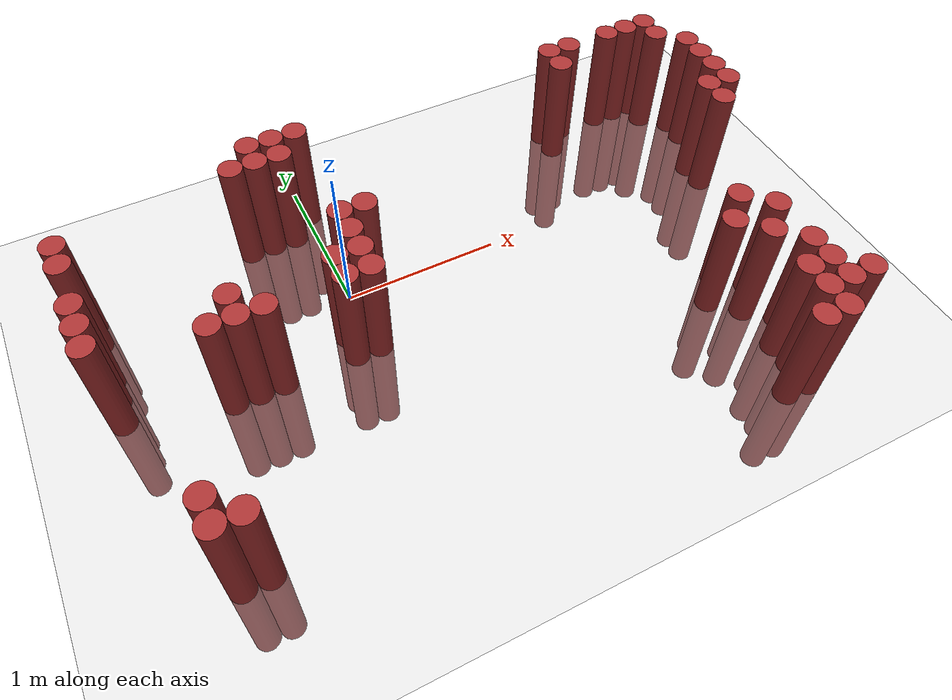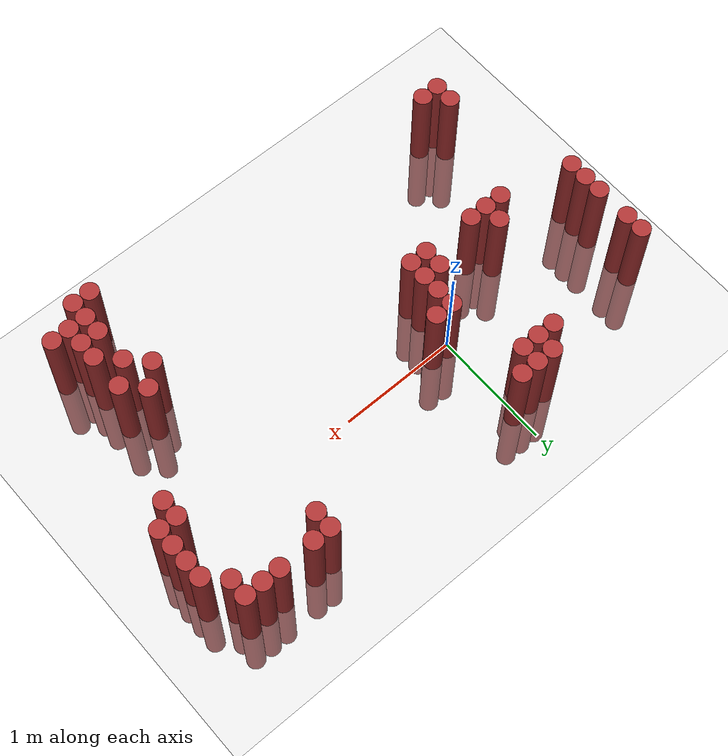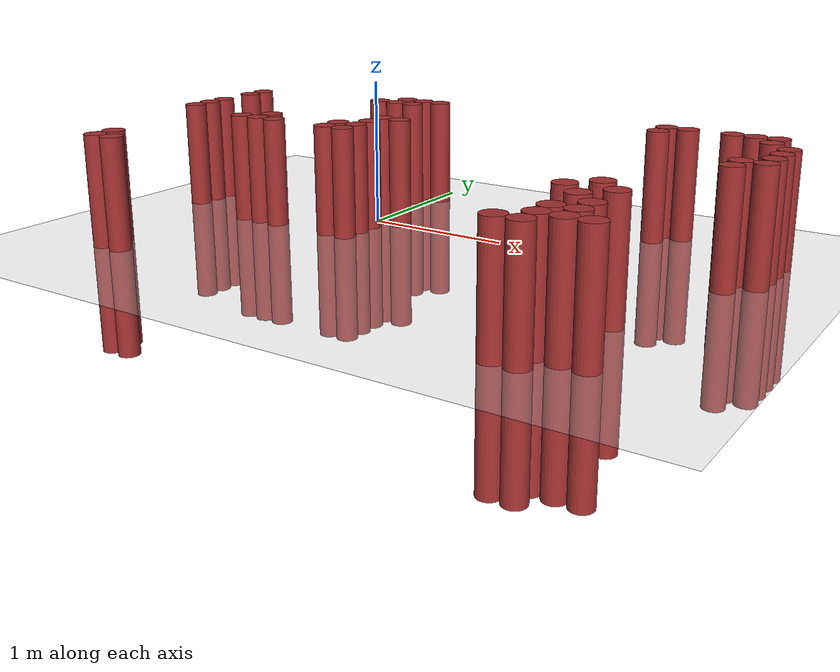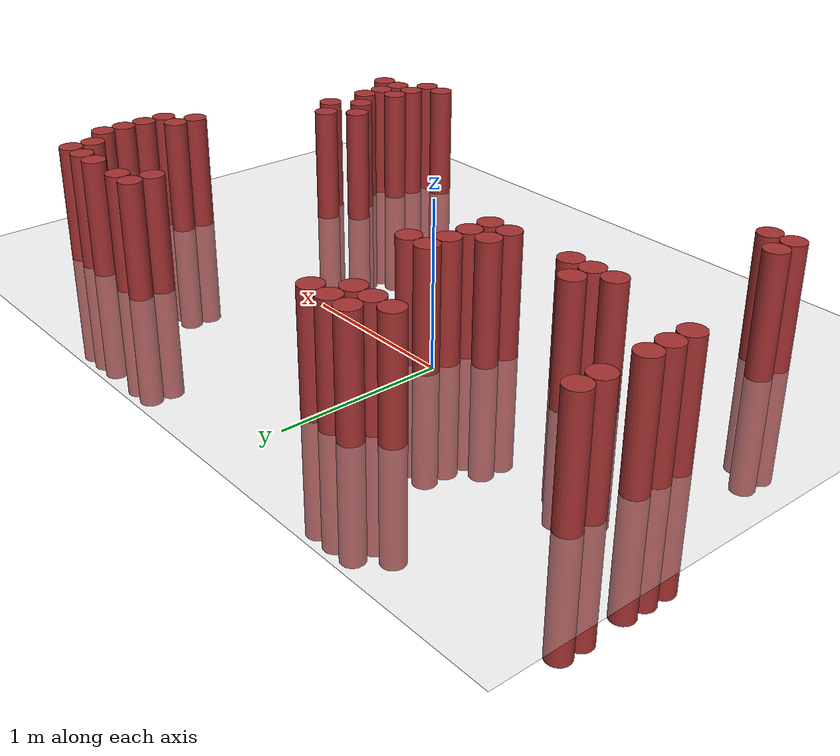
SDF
<sdf version="1.6">
 <world name="default">
  <model name="ground_plane">
   <static>1</static>
   <link name="link">
    <collision name="collision">
     <geometry><plane><normal>0 0 1</normal><size>100 100</size></plane></geometry>
     <surface><friction><ode><mu>100</mu><mu2>50</mu2></ode></friction></surface>
    </collision>
    <visual name="visual">
     <cast_shadows>0</cast_shadows>
     <geometry><plane><normal>0 0 1</normal><size>100 100</size></plane></geometry>
     <material>
      <script><uri>file://media/materials/scripts/gazebo.material</uri><name>Gazebo/Grey</name></script>
     </material>
    </visual>
   </link>
  </model>
  <model name="unit_cylinder_344">
   <static>1</static>
   <pose>-1.475000 -0.275000 0.000000 0.000000 0.000000 0.000000</pose>
   <link name="link">
    <inertial>
     <mass>1</mass>
     <inertia><ixx>0.145833</ixx><ixy>0</ixy><ixz>0</ixz><iyy>0.145833</iyy><iyz>0</iyz><izz>0.125</izz></inertia>
    </inertial>
    <collision name="collision">
     <geometry><cylinder><radius>0.075000</radius><length>1.5</length></cylinder></geometry>
    </collision>
    <visual name="visual">
     <geometry><cylinder><radius>0.075000</radius><length>1.5</length></cylinder></geometry>
     <material>
      <ambient>0.648000 0.192000 0.192000 1</ambient>
      <diffuse>0.648000 0.192000 0.192000 1</diffuse>
     </material>
     <material>
      <script><name>Gazebo/Grey</name><uri>file://media/materials/scripts/gazebo.material</uri></script>
     </material>
    </visual>
   </link>
  </model>
  <model name="unit_cylinder_345">
   <static>1</static>
   <pose>-1.475000 -0.125000 0.000000 0.000000 0.000000 0.000000</pose>
   <link name="link">
    <inertial>
     <mass>1</mass>
     <inertia><ixx>0.145833</ixx><ixy>0</ixy><ixz>0</ixz><iyy>0.145833</iyy><iyz>0</iyz><izz>0.125</izz></inertia>
    </inertial>
    <collision name="collision">
     <geometry><cylinder><radius>0.075000</radius><length>1.5</length></cylinder></geometry>
    </collision>
    <visual name="visual">
     <geometry><cylinder><radius>0.075000</radius><length>1.5</length></cylinder></geometry>
     <material>
      <ambient>0.648000 0.192000 0.192000 1</ambient>
      <diffuse>0.648000 0.192000 0.192000 1</diffuse>
     </material>
     <material>
      <script><name>Gazebo/Grey</name><uri>file://media/materials/scripts/gazebo.material</uri></script>
     </material>
    </visual>
   </link>
  </model>
  <model name="unit_cylinder_346">
   <static>1</static>
   <pose>-1.475000 0.025000 0.000000 0.000000 0.000000 0.000000</pose>
   <link name="link">
    <inertial>
     <mass>1</mass>
     <inertia><ixx>0.145833</ixx><ixy>0</ixy><ixz>0</ixz><iyy>0.145833</iyy><iyz>0</iyz><izz>0.125</izz></inertia>
    </inertial>
    <collision name="collision">
     <geometry><cylinder><radius>0.075000</radius><length>1.5</length></cylinder></geometry>
    </collision>
    <visual name="visual">
     <geometry><cylinder><radius>0.075000</radius><length>1.5</length></cylinder></geometry>
     <material>
      <ambient>0.648000 0.192000 0.192000 1</ambient>
      <diffuse>0.648000 0.192000 0.192000 1</diffuse>
     </material>
     <material>
      <script><name>Gazebo/Grey</name><uri>file://media/materials/scripts/gazebo.material</uri></script>
     </material>
    </visual>
   </link>
  </model>
  <model name="unit_cylinder_347">
   <static>1</static>
   <pose>-1.475000 0.325000 0.000000 0.000000 0.000000 0.000000</pose>
   <link name="link">
    <inertial>
     <mass>1</mass>
     <inertia><ixx>0.145833</ixx><ixy>0</ixy><ixz>0</ixz><iyy>0.145833</iyy><iyz>0</iyz><izz>0.125</izz></inertia>
    </inertial>
    <collision name="collision">
     <geometry><cylinder><radius>0.075000</radius><length>1.5</length></cylinder></geometry>
    </collision>
    <visual name="visual">
     <geometry><cylinder><radius>0.075000</radius><length>1.5</length></cylinder></geometry>
     <material>
      <ambient>0.648000 0.192000 0.192000 1</ambient>
      <diffuse>0.648000 0.192000 0.192000 1</diffuse>
     </material>
     <material>
      <script><name>Gazebo/Grey</name><uri>file://media/materials/scripts/gazebo.material</uri></script>
     </material>
    </visual>
   </link>
  </model>
  <model name="unit_cylinder_348">
   <static>1</static>
   <pose>-1.475000 0.475000 0.000000 0.000000 0.000000 0.000000</pose>
   <link name="link">
    <inertial>
     <mass>1</mass>
     <inertia><ixx>0.145833</ixx><ixy>0</ixy><ixz>0</ixz><iyy>0.145833</iyy><iyz>0</iyz><izz>0.125</izz></inertia>
    </inertial>
    <collision name="collision">
     <geometry><cylinder><radius>0.075000</radius><length>1.5</length></cylinder></geometry>
    </collision>
    <visual name="visual">
     <geometry><cylinder><radius>0.075000</radius><length>1.5</length></cylinder></geometry>
     <material>
      <ambient>0.648000 0.192000 0.192000 1</ambient>
      <diffuse>0.648000 0.192000 0.192000 1</diffuse>
     </material>
     <material>
      <script><name>Gazebo/Grey</name><uri>file://media/materials/scripts/gazebo.material</uri></script>
     </material>
    </visual>
   </link>
  </model>
  <model name="unit_cylinder_353">
   <static>1</static>
   <pose>-1.175000 -1.475000 0.000000 0.000000 0.000000 0.000000</pose>
   <link name="link">
    <inertial>
     <mass>1</mass>
     <inertia><ixx>0.145833</ixx><ixy>0</ixy><ixz>0</ixz><iyy>0.145833</iyy><iyz>0</iyz><izz>0.125</izz></inertia>
    </inertial>
    <collision name="collision">
     <geometry><cylinder><radius>0.075000</radius><length>1.5</length></cylinder></geometry>
    </collision>
    <visual name="visual">
     <geometry><cylinder><radius>0.075000</radius><length>1.5</length></cylinder></geometry>
     <material>
      <ambient>0.648000 0.192000 0.192000 1</ambient>
      <diffuse>0.648000 0.192000 0.192000 1</diffuse>
     </material>
     <material>
      <script><name>Gazebo/Grey</name><uri>file://media/materials/scripts/gazebo.material</uri></script>
     </material>
    </visual>
   </link>
  </model>
  <model name="unit_cylinder_354">
   <static>1</static>
   <pose>-1.175000 -1.325000 0.000000 0.000000 0.000000 0.000000</pose>
   <link name="link">
    <inertial>
     <mass>1</mass>
     <inertia><ixx>0.145833</ixx><ixy>0</ixy><ixz>0</ixz><iyy>0.145833</iyy><iyz>0</iyz><izz>0.125</izz></inertia>
    </inertial>
    <collision name="collision">
     <geometry><cylinder><radius>0.075000</radius><length>1.5</length></cylinder></geometry>
    </collision>
    <visual name="visual">
     <geometry><cylinder><radius>0.075000</radius><length>1.5</length></cylinder></geometry>
     <material>
      <ambient>0.648000 0.192000 0.192000 1</ambient>
      <diffuse>0.648000 0.192000 0.192000 1</diffuse>
     </material>
     <material>
      <script><name>Gazebo/Grey</name><uri>file://media/materials/scripts/gazebo.material</uri></script>
     </material>
    </visual>
   </link>
  </model>
  <model name="unit_cylinder_355">
   <static>1</static>
   <pose>-1.025000 -1.475000 0.000000 0.000000 0.000000 0.000000</pose>
   <link name="link">
    <inertial>
     <mass>1</mass>
     <inertia><ixx>0.145833</ixx><ixy>0</ixy><ixz>0</ixz><iyy>0.145833</iyy><iyz>0</iyz><izz>0.125</izz></inertia>
    </inertial>
    <collision name="collision">
     <geometry><cylinder><radius>0.075000</radius><length>1.5</length></cylinder></geometry>
    </collision>
    <visual name="visual">
     <geometry><cylinder><radius>0.075000</radius><length>1.5</length></cylinder></geometry>
     <material>
      <ambient>0.648000 0.192000 0.192000 1</ambient>
      <diffuse>0.648000 0.192000 0.192000 1</diffuse>
     </material>
     <material>
      <script><name>Gazebo/Grey</name><uri>file://media/materials/scripts/gazebo.material</uri></script>
     </material>
    </visual>
   </link>
  </model>
  <model name="unit_cylinder_360">
   <static>1</static>
   <pose>-0.875000 -0.425000 0.000000 0.000000 0.000000 0.000000</pose>
   <link name="link">
    <inertial>
     <mass>1</mass>
     <inertia><ixx>0.145833</ixx><ixy>0</ixy><ixz>0</ixz><iyy>0.145833</iyy><iyz>0</iyz><izz>0.125</izz></inertia>
    </inertial>
    <collision name="collision">
     <geometry><cylinder><radius>0.075000</radius><length>1.5</length></cylinder></geometry>
    </collision>
    <visual name="visual">
     <geometry><cylinder><radius>0.075000</radius><length>1.5</length></cylinder></geometry>
     <material>
      <ambient>0.648000 0.192000 0.192000 1</ambient>
      <diffuse>0.648000 0.192000 0.192000 1</diffuse>
     </material>
     <material>
      <script><name>Gazebo/Grey</name><uri>file://media/materials/scripts/gazebo.material</uri></script>
     </material>
    </visual>
   </link>
  </model>
  <model name="unit_cylinder_366">
   <static>1</static>
   <pose>-0.725000 -0.425000 0.000000 0.000000 0.000000 0.000000</pose>
   <link name="link">
    <inertial>
     <mass>1</mass>
     <inertia><ixx>0.145833</ixx><ixy>0</ixy><ixz>0</ixz><iyy>0.145833</iyy><iyz>0</iyz><izz>0.125</izz></inertia>
    </inertial>
    <collision name="collision">
     <geometry><cylinder><radius>0.075000</radius><length>1.5</length></cylinder></geometry>
    </collision>
    <visual name="visual">
     <geometry><cylinder><radius>0.075000</radius><length>1.5</length></cylinder></geometry>
     <material>
      <ambient>0.648000 0.192000 0.192000 1</ambient>
      <diffuse>0.648000 0.192000 0.192000 1</diffuse>
     </material>
     <material>
      <script><name>Gazebo/Grey</name><uri>file://media/materials/scripts/gazebo.material</uri></script>
     </material>
    </visual>
   </link>
  </model>
  <model name="unit_cylinder_367">
   <static>1</static>
   <pose>-0.725000 -0.275000 0.000000 0.000000 0.000000 0.000000</pose>
   <link name="link">
    <inertial>
     <mass>1</mass>
     <inertia><ixx>0.145833</ixx><ixy>0</ixy><ixz>0</ixz><iyy>0.145833</iyy><iyz>0</iyz><izz>0.125</izz></inertia>
    </inertial>
    <collision name="collision">
     <geometry><cylinder><radius>0.075000</radius><length>1.5</length></cylinder></geometry>
    </collision>
    <visual name="visual">
     <geometry><cylinder><radius>0.075000</radius><length>1.5</length></cylinder></geometry>
     <material>
      <ambient>0.648000 0.192000 0.192000 1</ambient>
      <diffuse>0.648000 0.192000 0.192000 1</diffuse>
     </material>
     <material>
      <script><name>Gazebo/Grey</name><uri>file://media/materials/scripts/gazebo.material</uri></script>
     </material>
    </visual>
   </link>
  </model>
  <model name="unit_cylinder_369">
   <static>1</static>
   <pose>-0.575000 -0.425000 0.000000 0.000000 0.000000 0.000000</pose>
   <link name="link">
    <inertial>
     <mass>1</mass>
     <inertia><ixx>0.145833</ixx><ixy>0</ixy><ixz>0</ixz><iyy>0.145833</iyy><iyz>0</iyz><izz>0.125</izz></inertia>
    </inertial>
    <collision name="collision">
     <geometry><cylinder><radius>0.075000</radius><length>1.5</length></cylinder></geometry>
    </collision>
    <visual name="visual">
     <geometry><cylinder><radius>0.075000</radius><length>1.5</length></cylinder></geometry>
     <material>
      <ambient>0.648000 0.192000 0.192000 1</ambient>
      <diffuse>0.648000 0.192000 0.192000 1</diffuse>
     </material>
     <material>
      <script><name>Gazebo/Grey</name><uri>file://media/materials/scripts/gazebo.material</uri></script>
     </material>
    </visual>
   </link>
  </model>
  <model name="unit_cylinder_370">
   <static>1</static>
   <pose>-0.425000 0.625000 0.000000 0.000000 0.000000 0.000000</pose>
   <link name="link">
    <inertial>
     <mass>1</mass>
     <inertia><ixx>0.145833</ixx><ixy>0</ixy><ixz>0</ixz><iyy>0.145833</iyy><iyz>0</iyz><izz>0.125</izz></inertia>
    </inertial>
    <collision name="collision">
     <geometry><cylinder><radius>0.075000</radius><length>1.5</length></cylinder></geometry>
    </collision>
    <visual name="visual">
     <geometry><cylinder><radius>0.075000</radius><length>1.5</length></cylinder></geometry>
     <material>
      <ambient>0.648000 0.192000 0.192000 1</ambient>
      <diffuse>0.648000 0.192000 0.192000 1</diffuse>
     </material>
     <material>
      <script><name>Gazebo/Grey</name><uri>file://media/materials/scripts/gazebo.material</uri></script>
     </material>
    </visual>
   </link>
  </model>
  <model name="unit_cylinder_373">
   <static>1</static>
   <pose>-0.275000 0.625000 0.000000 0.000000 0.000000 0.000000</pose>
   <link name="link">
    <inertial>
     <mass>1</mass>
     <inertia><ixx>0.145833</ixx><ixy>0</ixy><ixz>0</ixz><iyy>0.145833</iyy><iyz>0</iyz><izz>0.125</izz></inertia>
    </inertial>
    <collision name="collision">
     <geometry><cylinder><radius>0.075000</radius><length>1.5</length></cylinder></geometry>
    </collision>
    <visual name="visual">
     <geometry><cylinder><radius>0.075000</radius><length>1.5</length></cylinder></geometry>
     <material>
      <ambient>0.648000 0.192000 0.192000 1</ambient>
      <diffuse>0.648000 0.192000 0.192000 1</diffuse>
     </material>
     <material>
      <script><name>Gazebo/Grey</name><uri>file://media/materials/scripts/gazebo.material</uri></script>
     </material>
    </visual>
   </link>
  </model>
  <model name="unit_cylinder_374">
   <static>1</static>
   <pose>-0.275000 0.775000 0.000000 0.000000 0.000000 0.000000</pose>
   <link name="link">
    <inertial>
     <mass>1</mass>
     <inertia><ixx>0.145833</ixx><ixy>0</ixy><ixz>0</ixz><iyy>0.145833</iyy><iyz>0</iyz><izz>0.125</izz></inertia>
    </inertial>
    <collision name="collision">
     <geometry><cylinder><radius>0.075000</radius><length>1.5</length></cylinder></geometry>
    </collision>
    <visual name="visual">
     <geometry><cylinder><radius>0.075000</radius><length>1.5</length></cylinder></geometry>
     <material>
      <ambient>0.648000 0.192000 0.192000 1</ambient>
      <diffuse>0.648000 0.192000 0.192000 1</diffuse>
     </material>
     <material>
      <script><name>Gazebo/Grey</name><uri>file://media/materials/scripts/gazebo.material</uri></script>
     </material>
    </visual>
   </link>
  </model>
  <model name="unit_cylinder_376">
   <static>1</static>
   <pose>-0.125000 -0.425000 0.000000 0.000000 0.000000 0.000000</pose>
   <link name="link">
    <inertial>
     <mass>1</mass>
     <inertia><ixx>0.145833</ixx><ixy>0</ixy><ixz>0</ixz><iyy>0.145833</iyy><iyz>0</iyz><izz>0.125</izz></inertia>
    </inertial>
    <collision name="collision">
     <geometry><cylinder><radius>0.075000</radius><length>1.5</length></cylinder></geometry>
    </collision>
    <visual name="visual">
     <geometry><cylinder><radius>0.075000</radius><length>1.5</length></cylinder></geometry>
     <material>
      <ambient>0.648000 0.192000 0.192000 1</ambient>
      <diffuse>0.648000 0.192000 0.192000 1</diffuse>
     </material>
     <material>
      <script><name>Gazebo/Grey</name><uri>file://media/materials/scripts/gazebo.material</uri></script>
     </material>
    </visual>
   </link>
  </model>
  <model name="unit_cylinder_377">
   <static>1</static>
   <pose>-0.125000 -0.275000 0.000000 0.000000 0.000000 0.000000</pose>
   <link name="link">
    <inertial>
     <mass>1</mass>
     <inertia><ixx>0.145833</ixx><ixy>0</ixy><ixz>0</ixz><iyy>0.145833</iyy><iyz>0</iyz><izz>0.125</izz></inertia>
    </inertial>
    <collision name="collision">
     <geometry><cylinder><radius>0.075000</radius><length>1.5</length></cylinder></geometry>
    </collision>
    <visual name="visual">
     <geometry><cylinder><radius>0.075000</radius><length>1.5</length></cylinder></geometry>
     <material>
      <ambient>0.648000 0.192000 0.192000 1</ambient>
      <diffuse>0.648000 0.192000 0.192000 1</diffuse>
     </material>
     <material>
      <script><name>Gazebo/Grey</name><uri>file://media/materials/scripts/gazebo.material</uri></script>
     </material>
    </visual>
   </link>
  </model>
  <model name="unit_cylinder_378">
   <static>1</static>
   <pose>-0.125000 0.625000 0.000000 0.000000 0.000000 0.000000</pose>
   <link name="link">
    <inertial>
     <mass>1</mass>
     <inertia><ixx>0.145833</ixx><ixy>0</ixy><ixz>0</ixz><iyy>0.145833</iyy><iyz>0</iyz><izz>0.125</izz></inertia>
    </inertial>
    <collision name="collision">
     <geometry><cylinder><radius>0.075000</radius><length>1.5</length></cylinder></geometry>
    </collision>
    <visual name="visual">
     <geometry><cylinder><radius>0.075000</radius><length>1.5</length></cylinder></geometry>
     <material>
      <ambient>0.648000 0.192000 0.192000 1</ambient>
      <diffuse>0.648000 0.192000 0.192000 1</diffuse>
     </material>
     <material>
      <script><name>Gazebo/Grey</name><uri>file://media/materials/scripts/gazebo.material</uri></script>
     </material>
    </visual>
   </link>
  </model>
  <model name="unit_cylinder_379">
   <static>1</static>
   <pose>-0.125000 0.775000 0.000000 0.000000 0.000000 0.000000</pose>
   <link name="link">
    <inertial>
     <mass>1</mass>
     <inertia><ixx>0.145833</ixx><ixy>0</ixy><ixz>0</ixz><iyy>0.145833</iyy><iyz>0</iyz><izz>0.125</izz></inertia>
    </inertial>
    <collision name="collision">
     <geometry><cylinder><radius>0.075000</radius><length>1.5</length></cylinder></geometry>
    </collision>
    <visual name="visual">
     <geometry><cylinder><radius>0.075000</radius><length>1.5</length></cylinder></geometry>
     <material>
      <ambient>0.648000 0.192000 0.192000 1</ambient>
      <diffuse>0.648000 0.192000 0.192000 1</diffuse>
     </material>
     <material>
      <script><name>Gazebo/Grey</name><uri>file://media/materials/scripts/gazebo.material</uri></script>
     </material>
    </visual>
   </link>
  </model>
  <model name="unit_cylinder_381">
   <static>1</static>
   <pose>0.025000 -0.425000 0.000000 0.000000 0.000000 0.000000</pose>
   <link name="link">
    <inertial>
     <mass>1</mass>
     <inertia><ixx>0.145833</ixx><ixy>0</ixy><ixz>0</ixz><iyy>0.145833</iyy><iyz>0</iyz><izz>0.125</izz></inertia>
    </inertial>
    <collision name="collision">
     <geometry><cylinder><radius>0.075000</radius><length>1.5</length></cylinder></geometry>
    </collision>
    <visual name="visual">
     <geometry><cylinder><radius>0.075000</radius><length>1.5</length></cylinder></geometry>
     <material>
      <ambient>0.648000 0.192000 0.192000 1</ambient>
      <diffuse>0.648000 0.192000 0.192000 1</diffuse>
     </material>
     <material>
      <script><name>Gazebo/Grey</name><uri>file://media/materials/scripts/gazebo.material</uri></script>
     </material>
    </visual>
   </link>
  </model>
  <model name="unit_cylinder_382">
   <static>1</static>
   <pose>0.025000 -0.275000 0.000000 0.000000 0.000000 0.000000</pose>
   <link name="link">
    <inertial>
     <mass>1</mass>
     <inertia><ixx>0.145833</ixx><ixy>0</ixy><ixz>0</ixz><iyy>0.145833</iyy><iyz>0</iyz><izz>0.125</izz></inertia>
    </inertial>
    <collision name="collision">
     <geometry><cylinder><radius>0.075000</radius><length>1.5</length></cylinder></geometry>
    </collision>
    <visual name="visual">
     <geometry><cylinder><radius>0.075000</radius><length>1.5</length></cylinder></geometry>
     <material>
      <ambient>0.648000 0.192000 0.192000 1</ambient>
      <diffuse>0.648000 0.192000 0.192000 1</diffuse>
     </material>
     <material>
      <script><name>Gazebo/Grey</name><uri>file://media/materials/scripts/gazebo.material</uri></script>
     </material>
    </visual>
   </link>
  </model>
  <model name="unit_cylinder_383">
   <static>1</static>
   <pose>0.025000 -0.125000 0.000000 0.000000 0.000000 0.000000</pose>
   <link name="link">
    <inertial>
     <mass>1</mass>
     <inertia><ixx>0.145833</ixx><ixy>0</ixy><ixz>0</ixz><iyy>0.145833</iyy><iyz>0</iyz><izz>0.125</izz></inertia>
    </inertial>
    <collision name="collision">
     <geometry><cylinder><radius>0.075000</radius><length>1.5</length></cylinder></geometry>
    </collision>
    <visual name="visual">
     <geometry><cylinder><radius>0.075000</radius><length>1.5</length></cylinder></geometry>
     <material>
      <ambient>0.648000 0.192000 0.192000 1</ambient>
      <diffuse>0.648000 0.192000 0.192000 1</diffuse>
     </material>
     <material>
      <script><name>Gazebo/Grey</name><uri>file://media/materials/scripts/gazebo.material</uri></script>
     </material>
    </visual>
   </link>
  </model>
  <model name="unit_cylinder_384">
   <static>1</static>
   <pose>0.025000 0.025000 0.000000 0.000000 0.000000 0.000000</pose>
   <link name="link">
    <inertial>
     <mass>1</mass>
     <inertia><ixx>0.145833</ixx><ixy>0</ixy><ixz>0</ixz><iyy>0.145833</iyy><iyz>0</iyz><izz>0.125</izz></inertia>
    </inertial>
    <collision name="collision">
     <geometry><cylinder><radius>0.075000</radius><length>1.5</length></cylinder></geometry>
    </collision>
    <visual name="visual">
     <geometry><cylinder><radius>0.075000</radius><length>1.5</length></cylinder></geometry>
     <material>
      <ambient>0.648000 0.192000 0.192000 1</ambient>
      <diffuse>0.648000 0.192000 0.192000 1</diffuse>
     </material>
     <material>
      <script><name>Gazebo/Grey</name><uri>file://media/materials/scripts/gazebo.material</uri></script>
     </material>
    </visual>
   </link>
  </model>
  <model name="unit_cylinder_385">
   <static>1</static>
   <pose>0.025000 0.775000 0.000000 0.000000 0.000000 0.000000</pose>
   <link name="link">
    <inertial>
     <mass>1</mass>
     <inertia><ixx>0.145833</ixx><ixy>0</ixy><ixz>0</ixz><iyy>0.145833</iyy><iyz>0</iyz><izz>0.125</izz></inertia>
    </inertial>
    <collision name="collision">
     <geometry><cylinder><radius>0.075000</radius><length>1.5</length></cylinder></geometry>
    </collision>
    <visual name="visual">
     <geometry><cylinder><radius>0.075000</radius><length>1.5</length></cylinder></geometry>
     <material>
      <ambient>0.648000 0.192000 0.192000 1</ambient>
      <diffuse>0.648000 0.192000 0.192000 1</diffuse>
     </material>
     <material>
      <script><name>Gazebo/Grey</name><uri>file://media/materials/scripts/gazebo.material</uri></script>
     </material>
    </visual>
   </link>
  </model>
  <model name="unit_cylinder_388">
   <static>1</static>
   <pose>0.175000 0.025000 0.000000 0.000000 0.000000 0.000000</pose>
   <link name="link">
    <inertial>
     <mass>1</mass>
     <inertia><ixx>0.145833</ixx><ixy>0</ixy><ixz>0</ixz><iyy>0.145833</iyy><iyz>0</iyz><izz>0.125</izz></inertia>
    </inertial>
    <collision name="collision">
     <geometry><cylinder><radius>0.075000</radius><length>1.5</length></cylinder></geometry>
    </collision>
    <visual name="visual">
     <geometry><cylinder><radius>0.075000</radius><length>1.5</length></cylinder></geometry>
     <material>
      <ambient>0.648000 0.192000 0.192000 1</ambient>
      <diffuse>0.648000 0.192000 0.192000 1</diffuse>
     </material>
     <material>
      <script><name>Gazebo/Grey</name><uri>file://media/materials/scripts/gazebo.material</uri></script>
     </material>
    </visual>
   </link>
  </model>
  <model name="unit_cylinder_391">
   <static>1</static>
   <pose>1.825000 0.625000 0.000000 0.000000 0.000000 0.000000</pose>
   <link name="link">
    <inertial>
     <mass>1</mass>
     <inertia><ixx>0.145833</ixx><ixy>0</ixy><ixz>0</ixz><iyy>0.145833</iyy><iyz>0</iyz><izz>0.125</izz></inertia>
    </inertial>
    <collision name="collision">
     <geometry><cylinder><radius>0.075000</radius><length>1.5</length></cylinder></geometry>
    </collision>
    <visual name="visual">
     <geometry><cylinder><radius>0.075000</radius><length>1.5</length></cylinder></geometry>
     <material>
      <ambient>0.648000 0.192000 0.192000 1</ambient>
      <diffuse>0.648000 0.192000 0.192000 1</diffuse>
     </material>
     <material>
      <script><name>Gazebo/Grey</name><uri>file://media/materials/scripts/gazebo.material</uri></script>
     </material>
    </visual>
   </link>
  </model>
  <model name="unit_cylinder_392">
   <static>1</static>
   <pose>1.825000 0.775000 0.000000 0.000000 0.000000 0.000000</pose>
   <link name="link">
    <inertial>
     <mass>1</mass>
     <inertia><ixx>0.145833</ixx><ixy>0</ixy><ixz>0</ixz><iyy>0.145833</iyy><iyz>0</iyz><izz>0.125</izz></inertia>
    </inertial>
    <collision name="collision">
     <geometry><cylinder><radius>0.075000</radius><length>1.5</length></cylinder></geometry>
    </collision>
    <visual name="visual">
     <geometry><cylinder><radius>0.075000</radius><length>1.5</length></cylinder></geometry>
     <material>
      <ambient>0.648000 0.192000 0.192000 1</ambient>
      <diffuse>0.648000 0.192000 0.192000 1</diffuse>
     </material>
     <material>
      <script><name>Gazebo/Grey</name><uri>file://media/materials/scripts/gazebo.material</uri></script>
     </material>
    </visual>
   </link>
  </model>
  <model name="unit_cylinder_393">
   <static>1</static>
   <pose>1.975000 -1.775000 0.000000 0.000000 0.000000 0.000000</pose>
   <link name="link">
    <inertial>
     <mass>1</mass>
     <inertia><ixx>0.145833</ixx><ixy>0</ixy><ixz>0</ixz><iyy>0.145833</iyy><iyz>0</iyz><izz>0.125</izz></inertia>
    </inertial>
    <collision name="collision">
     <geometry><cylinder><radius>0.075000</radius><length>1.5</length></cylinder></geometry>
    </collision>
    <visual name="visual">
     <geometry><cylinder><radius>0.075000</radius><length>1.5</length></cylinder></geometry>
     <material>
      <ambient>0.648000 0.192000 0.192000 1</ambient>
      <diffuse>0.648000 0.192000 0.192000 1</diffuse>
     </material>
     <material>
      <script><name>Gazebo/Grey</name><uri>file://media/materials/scripts/gazebo.material</uri></script>
     </material>
    </visual>
   </link>
  </model>
  <model name="unit_cylinder_394">
   <static>1</static>
   <pose>1.975000 -1.025000 0.000000 0.000000 0.000000 0.000000</pose>
   <link name="link">
    <inertial>
     <mass>1</mass>
     <inertia><ixx>0.145833</ixx><ixy>0</ixy><ixz>0</ixz><iyy>0.145833</iyy><iyz>0</iyz><izz>0.125</izz></inertia>
    </inertial>
    <collision name="collision">
     <geometry><cylinder><radius>0.075000</radius><length>1.5</length></cylinder></geometry>
    </collision>
    <visual name="visual">
     <geometry><cylinder><radius>0.075000</radius><length>1.5</length></cylinder></geometry>
     <material>
      <ambient>0.648000 0.192000 0.192000 1</ambient>
      <diffuse>0.648000 0.192000 0.192000 1</diffuse>
     </material>
     <material>
      <script><name>Gazebo/Grey</name><uri>file://media/materials/scripts/gazebo.material</uri></script>
     </material>
    </visual>
   </link>
  </model>
  <model name="unit_cylinder_395">
   <static>1</static>
   <pose>1.975000 0.775000 0.000000 0.000000 0.000000 0.000000</pose>
   <link name="link">
    <inertial>
     <mass>1</mass>
     <inertia><ixx>0.145833</ixx><ixy>0</ixy><ixz>0</ixz><iyy>0.145833</iyy><iyz>0</iyz><izz>0.125</izz></inertia>
    </inertial>
    <collision name="collision">
     <geometry><cylinder><radius>0.075000</radius><length>1.5</length></cylinder></geometry>
    </collision>
    <visual name="visual">
     <geometry><cylinder><radius>0.075000</radius><length>1.5</length></cylinder></geometry>
     <material>
      <ambient>0.648000 0.192000 0.192000 1</ambient>
      <diffuse>0.648000 0.192000 0.192000 1</diffuse>
     </material>
     <material>
      <script><name>Gazebo/Grey</name><uri>file://media/materials/scripts/gazebo.material</uri></script>
     </material>
    </visual>
   </link>
  </model>
  <model name="unit_cylinder_396">
   <static>1</static>
   <pose>2.125000 -1.775000 0.000000 0.000000 0.000000 0.000000</pose>
   <link name="link">
    <inertial>
     <mass>1</mass>
     <inertia><ixx>0.145833</ixx><ixy>0</ixy><ixz>0</ixz><iyy>0.145833</iyy><iyz>0</iyz><izz>0.125</izz></inertia>
    </inertial>
    <collision name="collision">
     <geometry><cylinder><radius>0.075000</radius><length>1.5</length></cylinder></geometry>
    </collision>
    <visual name="visual">
     <geometry><cylinder><radius>0.075000</radius><length>1.5</length></cylinder></geometry>
     <material>
      <ambient>0.648000 0.192000 0.192000 1</ambient>
      <diffuse>0.648000 0.192000 0.192000 1</diffuse>
     </material>
     <material>
      <script><name>Gazebo/Grey</name><uri>file://media/materials/scripts/gazebo.material</uri></script>
     </material>
    </visual>
   </link>
  </model>
  <model name="unit_cylinder_397">
   <static>1</static>
   <pose>2.125000 -1.625000 0.000000 0.000000 0.000000 0.000000</pose>
   <link name="link">
    <inertial>
     <mass>1</mass>
     <inertia><ixx>0.145833</ixx><ixy>0</ixy><ixz>0</ixz><iyy>0.145833</iyy><iyz>0</iyz><izz>0.125</izz></inertia>
    </inertial>
    <collision name="collision">
     <geometry><cylinder><radius>0.075000</radius><length>1.5</length></cylinder></geometry>
    </collision>
    <visual name="visual">
     <geometry><cylinder><radius>0.075000</radius><length>1.5</length></cylinder></geometry>
     <material>
      <ambient>0.648000 0.192000 0.192000 1</ambient>
      <diffuse>0.648000 0.192000 0.192000 1</diffuse>
     </material>
     <material>
      <script><name>Gazebo/Grey</name><uri>file://media/materials/scripts/gazebo.material</uri></script>
     </material>
    </visual>
   </link>
  </model>
  <model name="unit_cylinder_398">
   <static>1</static>
   <pose>2.125000 -1.475000 0.000000 0.000000 0.000000 0.000000</pose>
   <link name="link">
    <inertial>
     <mass>1</mass>
     <inertia><ixx>0.145833</ixx><ixy>0</ixy><ixz>0</ixz><iyy>0.145833</iyy><iyz>0</iyz><izz>0.125</izz></inertia>
    </inertial>
    <collision name="collision">
     <geometry><cylinder><radius>0.075000</radius><length>1.5</length></cylinder></geometry>
    </collision>
    <visual name="visual">
     <geometry><cylinder><radius>0.075000</radius><length>1.5</length></cylinder></geometry>
     <material>
      <ambient>0.648000 0.192000 0.192000 1</ambient>
      <diffuse>0.648000 0.192000 0.192000 1</diffuse>
     </material>
     <material>
      <script><name>Gazebo/Grey</name><uri>file://media/materials/scripts/gazebo.material</uri></script>
     </material>
    </visual>
   </link>
  </model>
  <model name="unit_cylinder_399">
   <static>1</static>
   <pose>2.125000 -1.175000 0.000000 0.000000 0.000000 0.000000</pose>
   <link name="link">
    <inertial>
     <mass>1</mass>
     <inertia><ixx>0.145833</ixx><ixy>0</ixy><ixz>0</ixz><iyy>0.145833</iyy><iyz>0</iyz><izz>0.125</izz></inertia>
    </inertial>
    <collision name="collision">
     <geometry><cylinder><radius>0.075000</radius><length>1.5</length></cylinder></geometry>
    </collision>
    <visual name="visual">
     <geometry><cylinder><radius>0.075000</radius><length>1.5</length></cylinder></geometry>
     <material>
      <ambient>0.648000 0.192000 0.192000 1</ambient>
      <diffuse>0.648000 0.192000 0.192000 1</diffuse>
     </material>
     <material>
      <script><name>Gazebo/Grey</name><uri>file://media/materials/scripts/gazebo.material</uri></script>
     </material>
    </visual>
   </link>
  </model>
  <model name="unit_cylinder_400">
   <static>1</static>
   <pose>2.125000 -0.875000 0.000000 0.000000 0.000000 0.000000</pose>
   <link name="link">
    <inertial>
     <mass>1</mass>
     <inertia><ixx>0.145833</ixx><ixy>0</ixy><ixz>0</ixz><iyy>0.145833</iyy><iyz>0</iyz><izz>0.125</izz></inertia>
    </inertial>
    <collision name="collision">
     <geometry><cylinder><radius>0.075000</radius><length>1.5</length></cylinder></geometry>
    </collision>
    <visual name="visual">
     <geometry><cylinder><radius>0.075000</radius><length>1.5</length></cylinder></geometry>
     <material>
      <ambient>0.648000 0.192000 0.192000 1</ambient>
      <diffuse>0.648000 0.192000 0.192000 1</diffuse>
     </material>
     <material>
      <script><name>Gazebo/Grey</name><uri>file://media/materials/scripts/gazebo.material</uri></script>
     </material>
    </visual>
   </link>
  </model>
  <model name="unit_cylinder_401">
   <static>1</static>
   <pose>2.275000 -1.625000 0.000000 0.000000 0.000000 0.000000</pose>
   <link name="link">
    <inertial>
     <mass>1</mass>
     <inertia><ixx>0.145833</ixx><ixy>0</ixy><ixz>0</ixz><iyy>0.145833</iyy><iyz>0</iyz><izz>0.125</izz></inertia>
    </inertial>
    <collision name="collision">
     <geometry><cylinder><radius>0.075000</radius><length>1.5</length></cylinder></geometry>
    </collision>
    <visual name="visual">
     <geometry><cylinder><radius>0.075000</radius><length>1.5</length></cylinder></geometry>
     <material>
      <ambient>0.648000 0.192000 0.192000 1</ambient>
      <diffuse>0.648000 0.192000 0.192000 1</diffuse>
     </material>
     <material>
      <script><name>Gazebo/Grey</name><uri>file://media/materials/scripts/gazebo.material</uri></script>
     </material>
    </visual>
   </link>
  </model>
  <model name="unit_cylinder_402">
   <static>1</static>
   <pose>2.275000 -1.475000 0.000000 0.000000 0.000000 0.000000</pose>
   <link name="link">
    <inertial>
     <mass>1</mass>
     <inertia><ixx>0.145833</ixx><ixy>0</ixy><ixz>0</ixz><iyy>0.145833</iyy><iyz>0</iyz><izz>0.125</izz></inertia>
    </inertial>
    <collision name="collision">
     <geometry><cylinder><radius>0.075000</radius><length>1.5</length></cylinder></geometry>
    </collision>
    <visual name="visual">
     <geometry><cylinder><radius>0.075000</radius><length>1.5</length></cylinder></geometry>
     <material>
      <ambient>0.648000 0.192000 0.192000 1</ambient>
      <diffuse>0.648000 0.192000 0.192000 1</diffuse>
     </material>
     <material>
      <script><name>Gazebo/Grey</name><uri>file://media/materials/scripts/gazebo.material</uri></script>
     </material>
    </visual>
   </link>
  </model>
  <model name="unit_cylinder_403">
   <static>1</static>
   <pose>2.275000 -1.325000 0.000000 0.000000 0.000000 0.000000</pose>
   <link name="link">
    <inertial>
     <mass>1</mass>
     <inertia><ixx>0.145833</ixx><ixy>0</ixy><ixz>0</ixz><iyy>0.145833</iyy><iyz>0</iyz><izz>0.125</izz></inertia>
    </inertial>
    <collision name="collision">
     <geometry><cylinder><radius>0.075000</radius><length>1.5</length></cylinder></geometry>
    </collision>
    <visual name="visual">
     <geometry><cylinder><radius>0.075000</radius><length>1.5</length></cylinder></geometry>
     <material>
      <ambient>0.648000 0.192000 0.192000 1</ambient>
      <diffuse>0.648000 0.192000 0.192000 1</diffuse>
     </material>
     <material>
      <script><name>Gazebo/Grey</name><uri>file://media/materials/scripts/gazebo.material</uri></script>
     </material>
    </visual>
   </link>
  </model>
  <model name="unit_cylinder_404">
   <static>1</static>
   <pose>2.275000 -1.025000 0.000000 0.000000 0.000000 0.000000</pose>
   <link name="link">
    <inertial>
     <mass>1</mass>
     <inertia><ixx>0.145833</ixx><ixy>0</ixy><ixz>0</ixz><iyy>0.145833</iyy><iyz>0</iyz><izz>0.125</izz></inertia>
    </inertial>
    <collision name="collision">
     <geometry><cylinder><radius>0.075000</radius><length>1.5</length></cylinder></geometry>
    </collision>
    <visual name="visual">
     <geometry><cylinder><radius>0.075000</radius><length>1.5</length></cylinder></geometry>
     <material>
      <ambient>0.648000 0.192000 0.192000 1</ambient>
      <diffuse>0.648000 0.192000 0.192000 1</diffuse>
     </material>
     <material>
      <script><name>Gazebo/Grey</name><uri>file://media/materials/scripts/gazebo.material</uri></script>
     </material>
    </visual>
   </link>
  </model>
  <model name="unit_cylinder_405">
   <static>1</static>
   <pose>2.275000 0.775000 0.000000 0.000000 0.000000 0.000000</pose>
   <link name="link">
    <inertial>
     <mass>1</mass>
     <inertia><ixx>0.145833</ixx><ixy>0</ixy><ixz>0</ixz><iyy>0.145833</iyy><iyz>0</iyz><izz>0.125</izz></inertia>
    </inertial>
    <collision name="collision">
     <geometry><cylinder><radius>0.075000</radius><length>1.5</length></cylinder></geometry>
    </collision>
    <visual name="visual">
     <geometry><cylinder><radius>0.075000</radius><length>1.5</length></cylinder></geometry>
     <material>
      <ambient>0.648000 0.192000 0.192000 1</ambient>
      <diffuse>0.648000 0.192000 0.192000 1</diffuse>
     </material>
     <material>
      <script><name>Gazebo/Grey</name><uri>file://media/materials/scripts/gazebo.material</uri></script>
     </material>
    </visual>
   </link>
  </model>
  <model name="unit_cylinder_406">
   <static>1</static>
   <pose>2.425000 -1.625000 0.000000 0.000000 0.000000 0.000000</pose>
   <link name="link">
    <inertial>
     <mass>1</mass>
     <inertia><ixx>0.145833</ixx><ixy>0</ixy><ixz>0</ixz><iyy>0.145833</iyy><iyz>0</iyz><izz>0.125</izz></inertia>
    </inertial>
    <collision name="collision">
     <geometry><cylinder><radius>0.075000</radius><length>1.5</length></cylinder></geometry>
    </collision>
    <visual name="visual">
     <geometry><cylinder><radius>0.075000</radius><length>1.5</length></cylinder></geometry>
     <material>
      <ambient>0.648000 0.192000 0.192000 1</ambient>
      <diffuse>0.648000 0.192000 0.192000 1</diffuse>
     </material>
     <material>
      <script><name>Gazebo/Grey</name><uri>file://media/materials/scripts/gazebo.material</uri></script>
     </material>
    </visual>
   </link>
  </model>
  <model name="unit_cylinder_407">
   <static>1</static>
   <pose>2.425000 0.775000 0.000000 0.000000 0.000000 0.000000</pose>
   <link name="link">
    <inertial>
     <mass>1</mass>
     <inertia><ixx>0.145833</ixx><ixy>0</ixy><ixz>0</ixz><iyy>0.145833</iyy><iyz>0</iyz><izz>0.125</izz></inertia>
    </inertial>
    <collision name="collision">
     <geometry><cylinder><radius>0.075000</radius><length>1.5</length></cylinder></geometry>
    </collision>
    <visual name="visual">
     <geometry><cylinder><radius>0.075000</radius><length>1.5</length></cylinder></geometry>
     <material>
      <ambient>0.648000 0.192000 0.192000 1</ambient>
      <diffuse>0.648000 0.192000 0.192000 1</diffuse>
     </material>
     <material>
      <script><name>Gazebo/Grey</name><uri>file://media/materials/scripts/gazebo.material</uri></script>
     </material>
    </visual>
   </link>
  </model>
  <model name="unit_cylinder_411">
   <static>1</static>
   <pose>2.575000 -0.125000 0.000000 0.000000 0.000000 0.000000</pose>
   <link name="link">
    <inertial>
     <mass>1</mass>
     <inertia><ixx>0.145833</ixx><ixy>0</ixy><ixz>0</ixz><iyy>0.145833</iyy><iyz>0</iyz><izz>0.125</izz></inertia>
    </inertial>
    <collision name="collision">
     <geometry><cylinder><radius>0.075000</radius><length>1.5</length></cylinder></geometry>
    </collision>
    <visual name="visual">
     <geometry><cylinder><radius>0.075000</radius><length>1.5</length></cylinder></geometry>
     <material>
      <ambient>0.648000 0.192000 0.192000 1</ambient>
      <diffuse>0.648000 0.192000 0.192000 1</diffuse>
     </material>
     <material>
      <script><name>Gazebo/Grey</name><uri>file://media/materials/scripts/gazebo.material</uri></script>
     </material>
    </visual>
   </link>
  </model>
  <model name="unit_cylinder_412">
   <static>1</static>
   <pose>2.575000 0.025000 0.000000 0.000000 0.000000 0.000000</pose>
   <link name="link">
    <inertial>
     <mass>1</mass>
     <inertia><ixx>0.145833</ixx><ixy>0</ixy><ixz>0</ixz><iyy>0.145833</iyy><iyz>0</iyz><izz>0.125</izz></inertia>
    </inertial>
    <collision name="collision">
     <geometry><cylinder><radius>0.075000</radius><length>1.5</length></cylinder></geometry>
    </collision>
    <visual name="visual">
     <geometry><cylinder><radius>0.075000</radius><length>1.5</length></cylinder></geometry>
     <material>
      <ambient>0.648000 0.192000 0.192000 1</ambient>
      <diffuse>0.648000 0.192000 0.192000 1</diffuse>
     </material>
     <material>
      <script><name>Gazebo/Grey</name><uri>file://media/materials/scripts/gazebo.material</uri></script>
     </material>
    </visual>
   </link>
  </model>
  <model name="unit_cylinder_413">
   <static>1</static>
   <pose>2.575000 0.625000 0.000000 0.000000 0.000000 0.000000</pose>
   <link name="link">
    <inertial>
     <mass>1</mass>
     <inertia><ixx>0.145833</ixx><ixy>0</ixy><ixz>0</ixz><iyy>0.145833</iyy><iyz>0</iyz><izz>0.125</izz></inertia>
    </inertial>
    <collision name="collision">
     <geometry><cylinder><radius>0.075000</radius><length>1.5</length></cylinder></geometry>
    </collision>
    <visual name="visual">
     <geometry><cylinder><radius>0.075000</radius><length>1.5</length></cylinder></geometry>
     <material>
      <ambient>0.648000 0.192000 0.192000 1</ambient>
      <diffuse>0.648000 0.192000 0.192000 1</diffuse>
     </material>
     <material>
      <script><name>Gazebo/Grey</name><uri>file://media/materials/scripts/gazebo.material</uri></script>
     </material>
    </visual>
   </link>
  </model>
  <model name="unit_cylinder_414">
   <static>1</static>
   <pose>2.575000 0.775000 0.000000 0.000000 0.000000 0.000000</pose>
   <link name="link">
    <inertial>
     <mass>1</mass>
     <inertia><ixx>0.145833</ixx><ixy>0</ixy><ixz>0</ixz><iyy>0.145833</iyy><iyz>0</iyz><izz>0.125</izz></inertia>
    </inertial>
    <collision name="collision">
     <geometry><cylinder><radius>0.075000</radius><length>1.5</length></cylinder></geometry>
    </collision>
    <visual name="visual">
     <geometry><cylinder><radius>0.075000</radius><length>1.5</length></cylinder></geometry>
     <material>
      <ambient>0.648000 0.192000 0.192000 1</ambient>
      <diffuse>0.648000 0.192000 0.192000 1</diffuse>
     </material>
     <material>
      <script><name>Gazebo/Grey</name><uri>file://media/materials/scripts/gazebo.material</uri></script>
     </material>
    </visual>
   </link>
  </model>
  <model name="unit_cylinder_420">
   <static>1</static>
   <pose>2.725000 0.025000 0.000000 0.000000 0.000000 0.000000</pose>
   <link name="link">
    <inertial>
     <mass>1</mass>
     <inertia><ixx>0.145833</ixx><ixy>0</ixy><ixz>0</ixz><iyy>0.145833</iyy><iyz>0</iyz><izz>0.125</izz></inertia>
    </inertial>
    <collision name="collision">
     <geometry><cylinder><radius>0.075000</radius><length>1.5</length></cylinder></geometry>
    </collision>
    <visual name="visual">
     <geometry><cylinder><radius>0.075000</radius><length>1.5</length></cylinder></geometry>
     <material>
      <ambient>0.648000 0.192000 0.192000 1</ambient>
      <diffuse>0.648000 0.192000 0.192000 1</diffuse>
     </material>
     <material>
      <script><name>Gazebo/Grey</name><uri>file://media/materials/scripts/gazebo.material</uri></script>
     </material>
    </visual>
   </link>
  </model>
  <model name="unit_cylinder_421">
   <static>1</static>
   <pose>2.725000 0.175000 0.000000 0.000000 0.000000 0.000000</pose>
   <link name="link">
    <inertial>
     <mass>1</mass>
     <inertia><ixx>0.145833</ixx><ixy>0</ixy><ixz>0</ixz><iyy>0.145833</iyy><iyz>0</iyz><izz>0.125</izz></inertia>
    </inertial>
    <collision name="collision">
     <geometry><cylinder><radius>0.075000</radius><length>1.5</length></cylinder></geometry>
    </collision>
    <visual name="visual">
     <geometry><cylinder><radius>0.075000</radius><length>1.5</length></cylinder></geometry>
     <material>
      <ambient>0.648000 0.192000 0.192000 1</ambient>
      <diffuse>0.648000 0.192000 0.192000 1</diffuse>
     </material>
     <material>
      <script><name>Gazebo/Grey</name><uri>file://media/materials/scripts/gazebo.material</uri></script>
     </material>
    </visual>
   </link>
  </model>
  <model name="unit_cylinder_422">
   <static>1</static>
   <pose>2.725000 0.325000 0.000000 0.000000 0.000000 0.000000</pose>
   <link name="link">
    <inertial>
     <mass>1</mass>
     <inertia><ixx>0.145833</ixx><ixy>0</ixy><ixz>0</ixz><iyy>0.145833</iyy><iyz>0</iyz><izz>0.125</izz></inertia>
    </inertial>
    <collision name="collision">
     <geometry><cylinder><radius>0.075000</radius><length>1.5</length></cylinder></geometry>
    </collision>
    <visual name="visual">
     <geometry><cylinder><radius>0.075000</radius><length>1.5</length></cylinder></geometry>
     <material>
      <ambient>0.648000 0.192000 0.192000 1</ambient>
      <diffuse>0.648000 0.192000 0.192000 1</diffuse>
     </material>
     <material>
      <script><name>Gazebo/Grey</name><uri>file://media/materials/scripts/gazebo.material</uri></script>
     </material>
    </visual>
   </link>
  </model>
  <model name="unit_cylinder_423">
   <static>1</static>
   <pose>2.725000 0.475000 0.000000 0.000000 0.000000 0.000000</pose>
   <link name="link">
    <inertial>
     <mass>1</mass>
     <inertia><ixx>0.145833</ixx><ixy>0</ixy><ixz>0</ixz><iyy>0.145833</iyy><iyz>0</iyz><izz>0.125</izz></inertia>
    </inertial>
    <collision name="collision">
     <geometry><cylinder><radius>0.075000</radius><length>1.5</length></cylinder></geometry>
    </collision>
    <visual name="visual">
     <geometry><cylinder><radius>0.075000</radius><length>1.5</length></cylinder></geometry>
     <material>
      <ambient>0.648000 0.192000 0.192000 1</ambient>
      <diffuse>0.648000 0.192000 0.192000 1</diffuse>
     </material>
     <material>
      <script><name>Gazebo/Grey</name><uri>file://media/materials/scripts/gazebo.material</uri></script>
     </material>
    </visual>
   </link>
  </model>
 </world>
</sdf>
